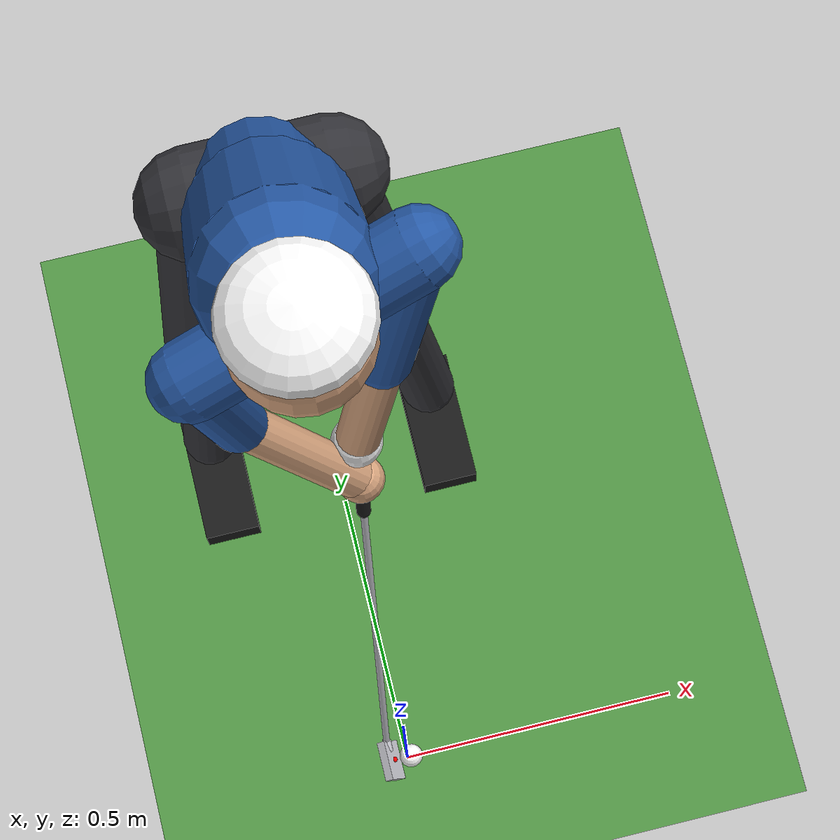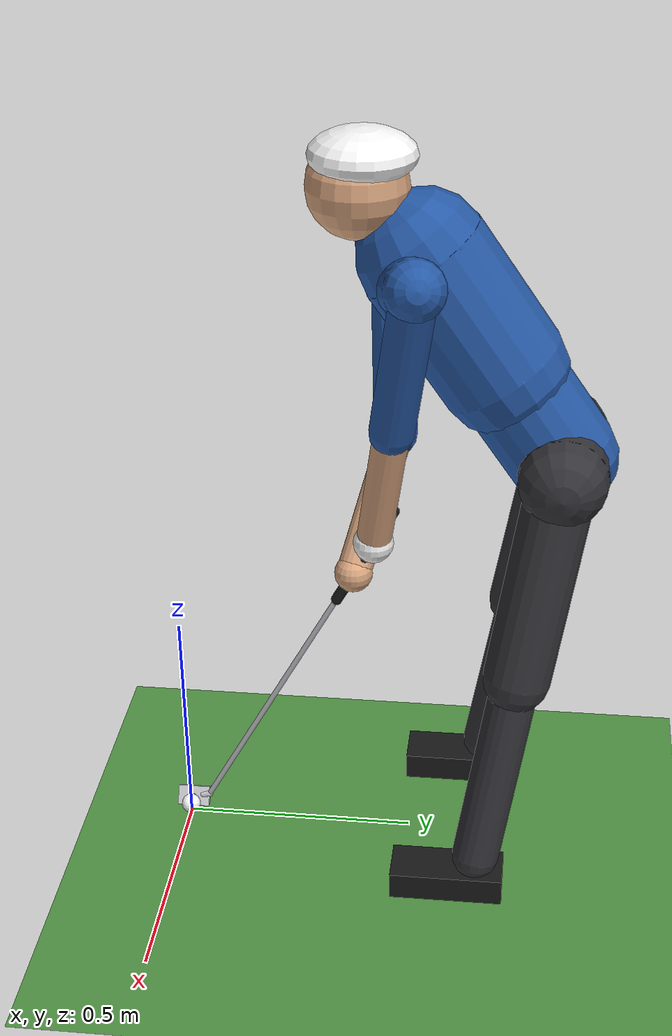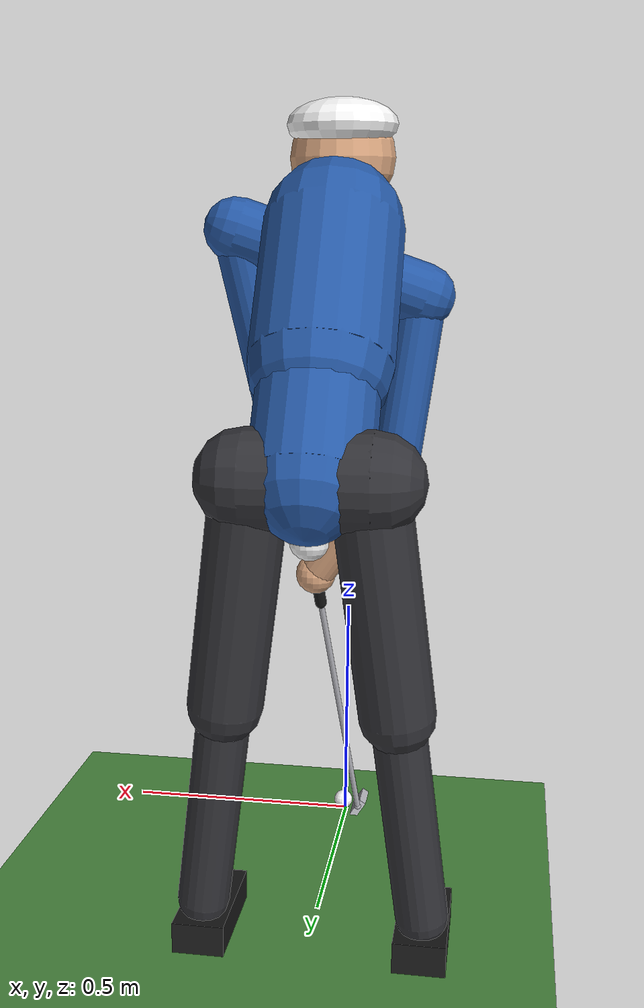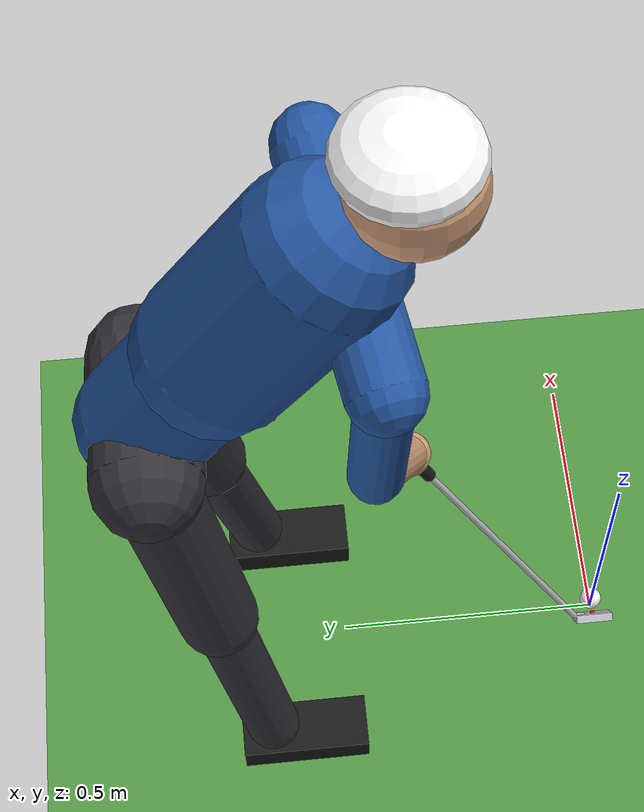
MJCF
<mujoco model="golfer_v17">
  <compiler angle="degree"/>
  <!-- timestep: 5e-5 s no geral; o run_swing() desce para 5e-6 s enquanto a
       cabeça do taco está perto da bola (o contacto não converge a 5e-5). -->
  <!-- cone="elliptic": cone de atrito exato em vez da pirâmide que o aproxima.
       É o que faz o solreffriction do impacto ter efeito (com a pirâmide é ignorado). -->
  <option gravity="0 0 -9.81" timestep="0.00005" density="1.204" viscosity="1.81e-5"
          cone="elliptic"/>

  <visual>
    <global azimuth="-60" elevation="-15" offwidth="1280" offheight="960"/>
  </visual>
  <statistic center="0 0.4 0.8" extent="1.8"/>

  <asset>
    <texture type="skybox" builtin="gradient" rgb1=".55 .75 .95" rgb2=".95 .97 1" width="32" height="512"/>
    <texture name="grass" type="2d" builtin="checker" width="512" height="512" rgb1=".30 .55 .25" rgb2=".33 .60 .28"/>
    <material name="grass" texture="grass" texrepeat="8 8" texuniform="true"/>
    <material name="skin"  rgba="0.85 0.65 0.50 1"/>
    <material name="shirt" rgba="0.15 0.35 0.65 1"/>
    <material name="pants" rgba="0.20 0.20 0.22 1"/>
    <material name="glove" rgba="0.97 0.97 0.97 1"/>
    <material name="steel" rgba="0.75 0.75 0.78 1" specular="0.8" shininess="0.8"/>
    <material name="grip"  rgba="0.10 0.10 0.10 1"/>
  </asset>

  <default>
    <!-- Por defeito: geoms só visuais (contype/conaffinity = 0), com arrasto do
         ar calculado a partir da sua forma (elipsoide equivalente). -->
    <geom type="capsule" contype="0" conaffinity="0" condim="3" fluidshape="ellipsoid"/>
    <joint type="hinge" limited="true" armature="0.01"/>
    <default class="contact">
      <geom solimp="0.95 0.99 0.001"/>
    </default>
  </default>

  <worldbody>
    <light pos="0 -1 4" dir="0 0.2 -1" diffuse=".8 .8 .8"/>
    <light pos="-3 3 3" dir="1 -1 -1" diffuse=".3 .3 .3"/>
    <geom name="floor" type="plane" size="30 30 0.1" material="grass"
          contype="1" conaffinity="1" friction="0.8 0.005 0.002"
          solref="0.002 1" solimp="0.1 0.1 0.001"/>

    <camera name="face_on"       pos="0.2 -3.6 0.95" xyaxes="1 0 0 0 0.06 1"/>
    <camera name="down_the_line" pos="-3.2 0.45 1.2" xyaxes="0 -1 0 0.12 0 1"/>

    <!-- ===== Pernas + pélvis: fixas ao mundo (sem junta), joelhos fletidos ===== -->
    <body name="lower_body">
      <geom name="pelvis"  fromto="0.090 0.800 0.943 -0.130 0.800 0.943" size="0.09" material="pants" mass="12"/>
      <geom name="thigh_l" fromto="0.080 0.800 0.943 0.141 0.729 0.512" size="0.07"  material="pants" mass="9"/>
      <geom name="shin_l"  fromto="0.141 0.729 0.512 0.200 0.660 0.090" size="0.05"  material="pants" mass="4"/>
      <geom name="foot_l"  type="box" pos="0.200 0.600 0.030" size="0.05 0.12 0.03" material="grip" mass="1"/>
      <geom name="thigh_r" fromto="-0.120 0.800 0.943 -0.171 0.729 0.511" size="0.07"  material="pants" mass="9"/>
      <geom name="shin_r"  fromto="-0.171 0.729 0.511 -0.220 0.660 0.090" size="0.05"  material="pants" mass="4"/>
      <geom name="foot_r"  type="box" pos="-0.220 0.600 0.030" size="0.05 0.12 0.03" material="grip" mass="1"/>
    </body>

    <!-- ===== TRONCO: dof 1 — roda em torno da coluna ===== -->
    <body name="torso" pos="-0.020 0.800 0.943">
      <!-- eixo = direção da coluna (cintura -> topo do peito), 35° da vertical.
           Amortecimento 2 N.m.s: o tronco é o segmento mais pesado e lento. -->
      <joint name="torso" axis="0 -0.5735 0.8192" range="-100 95" damping="2"/>
      <geom name="waist"  fromto="0 0 0 0.000 -0.126 0.180"  size="0.11" material="shirt" mass="12"/>
      <geom name="chest"  fromto="0.000 -0.126 0.180 0.000 -0.287 0.410" size="0.13" material="shirt" mass="14"/>
      <!-- linha dos ombros: agora rígida com o tronco (no V13 rodava com os braços) -->
      <geom name="shoulders" fromto="0.180 -0.287 0.410  -0.160 -0.357 0.290" size="0.06" material="shirt" mass="2"/>

      <body name="head" pos="0 -0.287 0.410">
        <joint name="neck" axis="0 -0.5735 0.8192" range="-100 100" damping="0.1"/>
        <geom name="neck" fromto="0 0 0  0 -0.123 0.130" size="0.045" material="skin" mass="1"/>
        <!-- cabeça inclinada para baixo, a "olhar" para a bola -->
        <geom name="head" type="sphere" pos="0 -0.123 0.130" size="0.10" material="skin" mass="5"/>
        <geom name="cap"  type="ellipsoid" pos="0 -0.113 0.190" size="0.105 0.105 0.05" material="glove" mass="0.01"/>
      </body>

      <!-- ===== BRAÇO ESQUERDO: dof 2 — elevação à frente do peito ===== -->
      <body name="arm_l" pos="0.180 -0.287 0.410">
        <!-- eixo = linha dos ombros (ombro esq. - ombro dir., normalizado) -->
        <joint name="shoulder" axis="0.9257 0.1906 0.3267" range="-115 10" damping="0.5"/>
        <geom name="upperarm_l" fromto="0 0 0  -0.068 -0.047 -0.319" size="0.045" material="shirt" mass="2.2"/>
        <geom name="forearm_l"  fromto="-0.068 -0.047 -0.319  -0.128 -0.089 -0.600" size="0.036" material="skin" mass="1.3"/>
        <geom name="hand_l" type="sphere" pos="-0.128 -0.089 -0.600" size="0.042" material="glove" mass="0.5"/>

        <!-- ===== TACO: dof 3 — a junta do PULSO ===== -->
        <body name="club" pos="-0.131 -0.110 -0.640">
          <!-- eixo = normal ao plano de swing (igual ao V13) -->
          <joint name="wrist" axis="0.000 -0.938 0.347" range="-110 120" damping="0.1"/>
          <!-- Taco (ferro 7): geometria copiada do V13 -->
          <geom name="grip"  fromto="0.01 0.063 0.119  -0.01 -0.058 -0.11" size="0.012" material="grip"  mass="0.05"/>
          <geom name="shaft" fromto="-0.01 -0.058 -0.11  -0.061 -0.367 -0.691"   size="0.006" material="steel" mass="0.11"/>
          <geom name="hosel" fromto="-0.061 -0.367 -0.691  -0.061 -0.383 -0.695"   size="0.008" material="steel" mass="0.01"/>
          <!-- cabeça: caixa rodada -32° em Y -> a face (+x local) fica com loft de 32°.
               Única parte do golfista que colide (bits 2: toca na bola, não no chão). -->
          <geom name="clubhead" class="contact" type="box" pos="-0.061 -0.403 -0.699" euler="0 -32 0"
                size="0.008 0.036 0.022" material="steel" mass="0.26" contype="2" conaffinity="2"/>
          <site name="clubface" pos="-0.054 -0.403 -0.695" size="0.005" rgba="1 0 0 1"/>
        </body>
      </body>

      <!-- ===== BRAÇO DIREITO: passivo (rótula + charneira), mão presa ao punho ===== -->
      <body name="upperarm_r" pos="-0.160 -0.357 0.290">
        <joint name="shoulder_r" type="ball" limited="false" damping="0.5" stiffness="3"/>
        <geom name="upperarm_r" fromto="0 0 0  0.043 0.010 -0.317" size="0.045" material="shirt" mass="2.2"/>
        <body name="forearm_r" pos="0.043 0.010 -0.317">
          <!-- eixo = normal ao plano braço/antebraço no endereço; q > 0 dobra.
               No endereço o cotovelo já está dobrado ~30°, por isso o limite de
               extensão (braço esticado) é -30. -->
          <joint name="elbow_r" axis="-0.5175 -0.8501 -0.097" range="-30 115" damping="0.5"/>
          <geom name="forearm_r" fromto="0 0 0  0.162 -0.071 -0.242" size="0.036" material="skin" mass="1.3"/>
          <geom name="hand_r" type="sphere" pos="0.162 -0.071 -0.242" size="0.040" material="skin" mass="0.5"/>
        </body>
      </body>
    </body>

    <!-- ===== Bola de golfe: 45.9 g, Ø 42.7 mm, 6 mm à frente da face ===== -->
    <body name="ball" pos="0.006 0 0.0213">
      <freejoint name="ball_free"/>
      <geom name="ball_geom" class="contact" type="sphere" size="0.0213" mass="0.0459"
            rgba="1 1 1 1" contype="1" conaffinity="3" friction="0.4 0.005 0.002"
            solref="0.002 1" solimp="0.1 0.1 0.001"
            fluidshape="ellipsoid" fluidcoef="0.22 0.25 0.1 1.0 0.9"/>
      <!-- 3.º valor do friction = atrito de ROLAMENTO (~0.09, relva de fairway). -->
    </body>
  </worldbody>

  <equality>
    <connect name="hand_r_grip" body1="forearm_r" body2="club" anchor="0.162 -0.071 -0.242"/>
    <!-- cabeça parada: neck = -torso -->
    <joint name="head_still" joint1="neck" joint2="torso" polycoef="0 -1 0 0 0"/>
  </equality>

  <contact>
    <pair geom1="clubhead" geom2="ball_geom" condim="3"
          solref="0.0004 0.15" solimp="0.95 0.99 0.001" friction="0.4 0.4 0.005 0.0001 0.0001"
          solreffriction="0.0001 1"/>
  </contact>

  <actuator>
    <motor name="torso_motor"    joint="torso"    gear="1" ctrlrange="-150 150" ctrllimited="true"/>
    <motor name="shoulder_motor" joint="shoulder" gear="1" ctrlrange="-100 100" ctrllimited="true"/>
    <motor name="wrist_motor"    joint="wrist"    gear="1" ctrlrange="-40 40"   ctrllimited="true"/>
  </actuator>

  <!-- Sensores: gráficos ao vivo no painel "Sensor" do viewer (Option -> Sensor). -->
  <sensor>
    <framelinvel name="clubhead_vel" objtype="site" objname="clubface"/>
    <framepos    name="ball_pos"     objtype="body" objname="ball"/>
    <framelinvel name="ball_vel"     objtype="body" objname="ball"/>
    <jointpos    name="q_tronco"     joint="torso"/>
    <jointpos    name="q_ombro"      joint="shoulder"/>
    <jointpos    name="q_pulso"      joint="wrist"/>
    <jointvel    name="w_tronco"     joint="torso"/>
    <jointvel    name="w_ombro"      joint="shoulder"/>
    <jointvel    name="w_pulso"      joint="wrist"/>
    <actuatorfrc name="tau_tronco"   actuator="torso_motor"/>
    <actuatorfrc name="tau_ombro"    actuator="shoulder_motor"/>
    <actuatorfrc name="tau_pulso"    actuator="wrist_motor"/>
  </sensor>
</mujoco>
